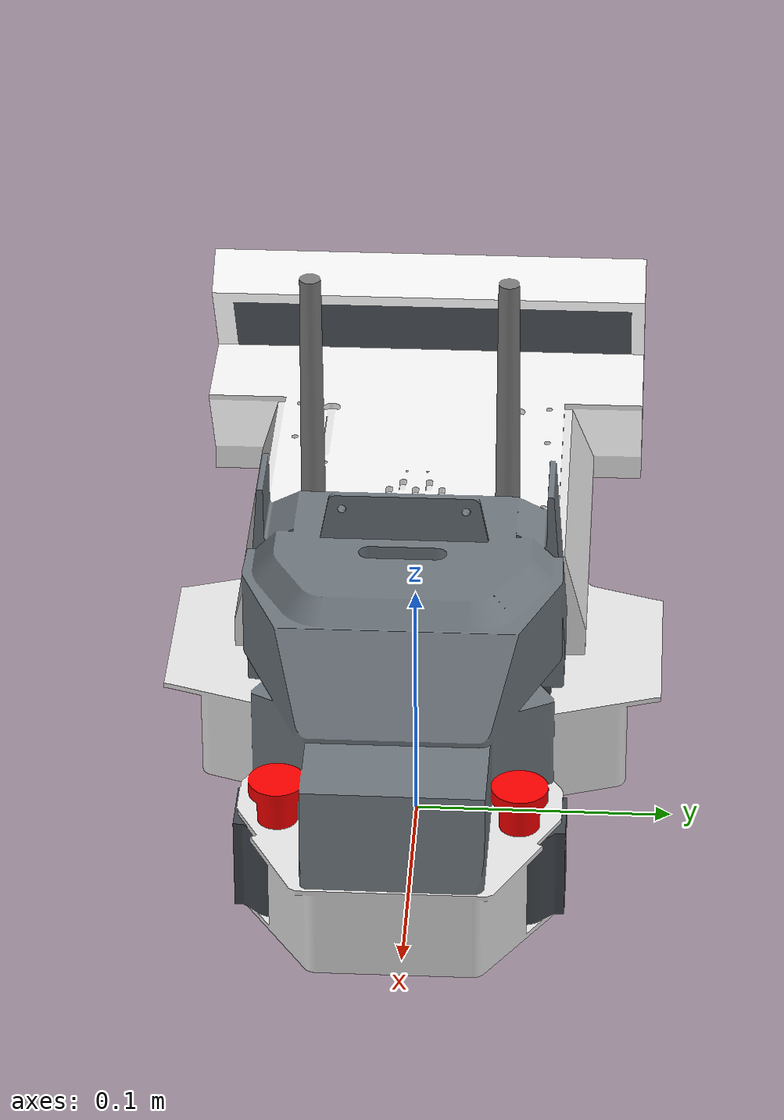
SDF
<sdf version="1.11">
  <model name="limo_four_diff">
    <link name="base_footprint">
      <inertial>
        <pose>0.007904637105296531 0 0.16082132138479099 0 0 0</pose>
        <mass>2.3657</mass>
        <inertia>
          <ixx>0.24894067417254931</ixx>
          <ixy>0</ixy>
          <ixz>-0.0019674412901044091</ixz>
          <iyy>0.97055935745868027</iyy>
          <iyz>0</iyz>
          <izz>0.96162078328613076</izz>
        </inertia>
      </inertial>

      <!-- Base collisions and visuals -->
      <collision name="base_link_collision">
        <pose>0 0 0.15 0 0 0</pose>
        <geometry>
          <box>
            <size>0.13 0.12 0.1</size>
          </box>
        </geometry>
      </collision>
      <visual name="base_link_visual">
        <pose>0 0 0 0 0 1.57</pose>
        <geometry>
          <mesh>
            <scale>1 1 1</scale>
            <uri>file:///home/matt/ros2_ws/install/limo_description/share/limo_description/meshes/limo_base.dae</uri>
          </mesh>
        </geometry>
      </visual>

      <!-- IMU Sensor -->
      <sensor name="imu_sensor" type="imu">
        <always_on>true</always_on>
        <update_rate>100</update_rate>
        <visualize>true</visualize>
        <imu>
          <angular_velocity>
            <x><noise type="gaussian"><mean>0</mean><stddev>0.0002</stddev></noise></x>
            <y><noise type="gaussian"><mean>0</mean><stddev>0.0002</stddev></noise></y>
            <z><noise type="gaussian"><mean>0</mean><stddev>0.0002</stddev></noise></z>
          </angular_velocity>
          <linear_acceleration>
            <x><noise type="gaussian"><mean>0</mean><stddev>0.017</stddev></noise></x>
            <y><noise type="gaussian"><mean>0</mean><stddev>0.017</stddev></noise></y>
            <z><noise type="gaussian"><mean>0</mean><stddev>0.017</stddev></noise></z>
          </linear_acceleration>
          <orientation>
            <x><noise type="gaussian"><mean>0.0</mean><stddev>0.002</stddev></noise></x>
            <y><noise type="gaussian"><mean>0.0</mean><stddev>0.002</stddev></noise></y>
            <z><noise type="gaussian"><mean>0.0</mean><stddev>0.002</stddev></noise></z>
          </orientation>
        </imu>

        <!-- Modern Gazebo Sim IMU plugin -->
        <plugin name="imu" filename="gz-sim-imu-system">
          <topic>imu/data</topic>
          <frame_id>imu_link</frame_id>
        </plugin>
      </sensor>

      <!-- Laser Sensor -->
      <sensor name="laser" type="ray">
        <always_on>true</always_on>
        <visualize>true</visualize>
        <update_rate>10</update_rate>
        <ray>
          <scan>
            <horizontal>
              <samples>120</samples>
              <resolution>1</resolution>
              <min_angle>-3.14159</min_angle>
              <max_angle>3.14159</max_angle>
            </horizontal>
          </scan>
          <range>
            <min>0.3</min>
            <max>15.0</max>
            <resolution>0.015</resolution>
          </range>
          <noise>
            <type>gaussian</type>
            <mean>0</mean>
            <stddev>0.01</stddev>
          </noise>
        </ray>

        <!-- Modern Gazebo Sim Laser plugin -->
        <plugin name="laser" filename="gz-sim-ray-sensor-system">
          <topic>scan</topic>
          <frame_id>laser_link</frame_id>
        </plugin>
      </sensor>

      <!-- Depth Camera Sensor -->
      <sensor name="depth_camera" type="camera">
        <always_on>true</always_on>
        <update_rate>10</update_rate>
        <camera name="limo_camera">
          <horizontal_fov>1.3962634</horizontal_fov>
          <image>
            <width>640</width>
            <height>480</height>
            <format>R8G8B8</format>
          </image>
          <clip>
            <near>0.02</near>
            <far>50.0</far>
          </clip>
        </camera>

        <!-- Modern Gazebo Sim Depth Camera plugin -->
        <plugin name="depth_camera" filename="gz-sim-depth-camera-system">
          <topic>camera/depth</topic>
          <frame_id>depth_camera_link</frame_id>
        </plugin>
      </sensor>
    </link>

    <!-- Wheels and joints would go here (omitted for brevity, same as your original) -->

    <!--  Modern Gazebo Sim Diff Drive plugin -->
    <plugin name="diff_drive" filename="gz-sim-diff-drive-system">
      <update_rate>50</update_rate>

      <!-- Wheels -->
      <left_joint>front_left_wheel</left_joint>
      <right_joint>front_right_wheel</right_joint>
      <left_joint>rear_left_wheel</left_joint>
      <right_joint>rear_right_wheel</right_joint>

      <!-- Wheel properties -->
      <wheel_separation>0.172</wheel_separation>
      <wheel_radius>0.045</wheel_radius>

      <!-- Limits -->
      <max_wheel_torque>20</max_wheel_torque>
      <max_wheel_acceleration>1.0</max_wheel_acceleration>

      <!-- ROS 2 / transport interface -->
      <topic>cmd_vel</topic>
      <odom_topic>odom</odom_topic>
      <frame_id>odom</frame_id>
      <child_frame_id>base_link</child_frame_id>
    </plugin>
  </model>
</sdf>
